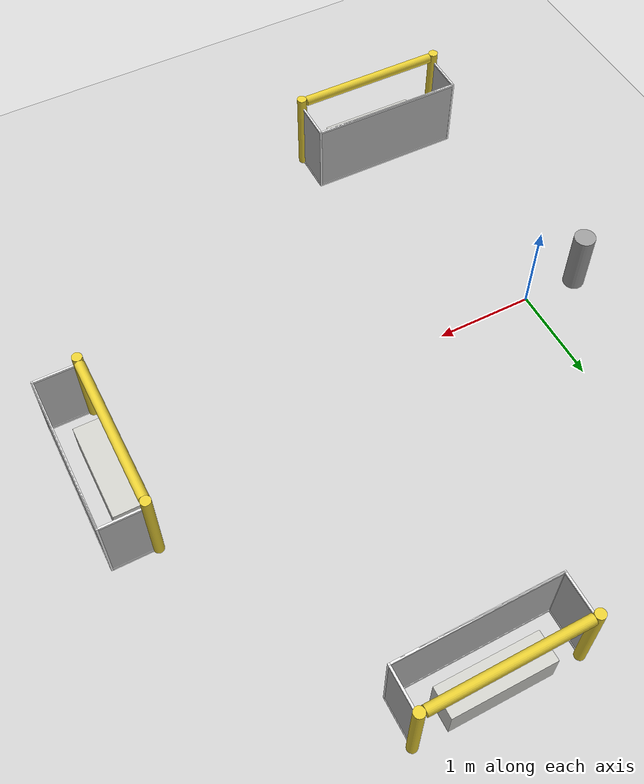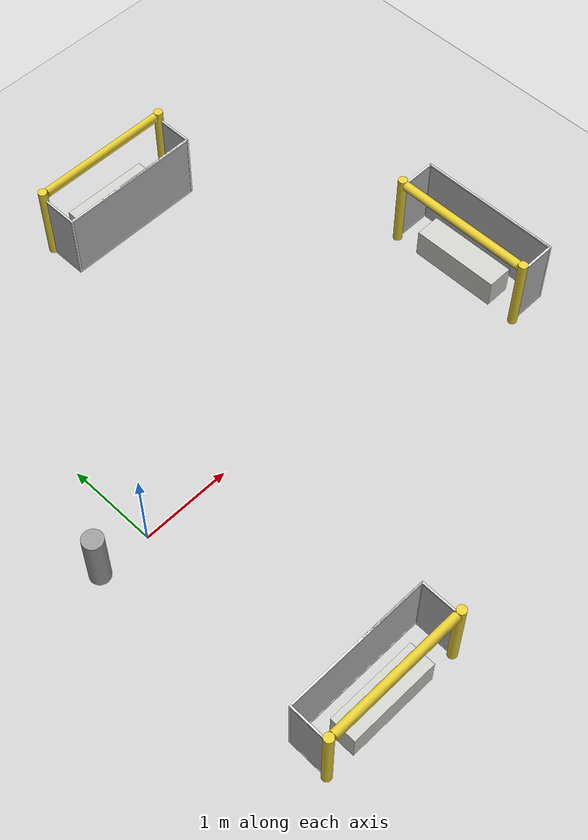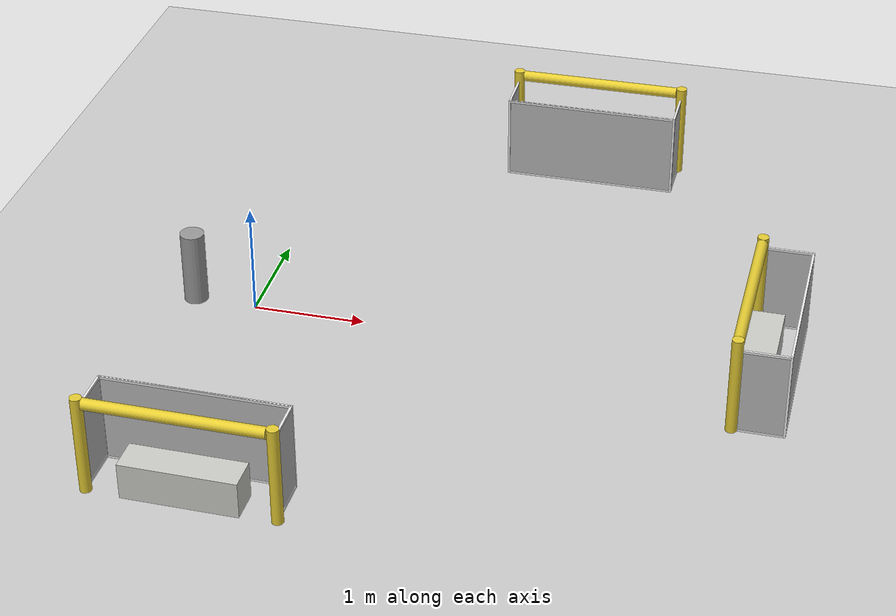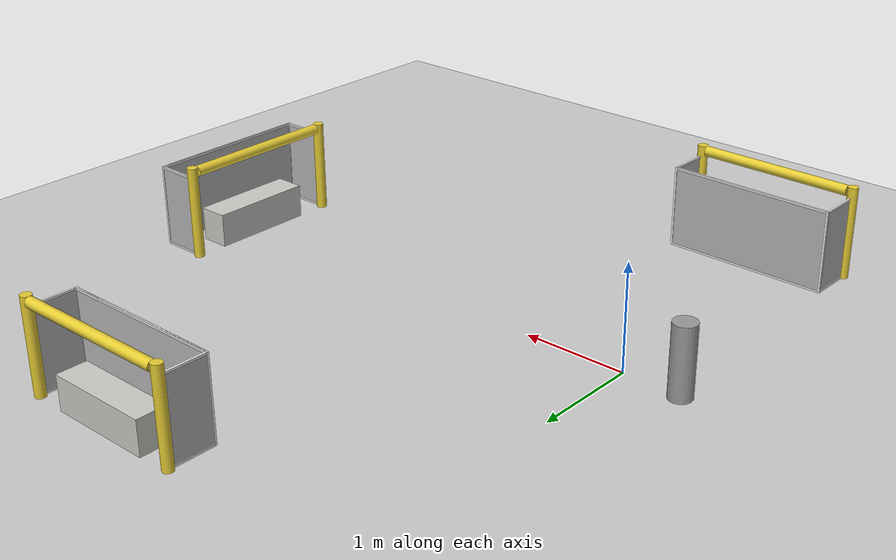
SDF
<sdf version="1.6">
 <world name="default">
  <light name="sun" type="directional">
   <pose>0 0 10 0 -0 0</pose>
   <diffuse>0.8 0.8 0.8 1</diffuse>
   <specular>0.2 0.2 0.2 1</specular>
   <attenuation>
    <range>1000</range>
    <constant>0.9</constant>
    <linear>0.01</linear>
    <quadratic>0.001</quadratic>
   </attenuation>
   <direction>-0.5 0.1 -0.9</direction>
  </light>
  <model name="ground_plane">
   <static>1</static>
   <link name="link">
    <collision name="collision">
     <geometry><plane><normal>0 0 1</normal><size>100 100</size></plane></geometry>
     <surface>
      <contact><collide_bitmask>65535</collide_bitmask></contact>
      <friction><ode><mu>100</mu><mu2>50</mu2></ode></friction>
     </surface>
    </collision>
    <visual name="visual">
     <cast_shadows>0</cast_shadows>
     <geometry><plane><normal>0 0 1</normal><size>100 100</size></plane></geometry>
     <material>
      <script><uri>file://media/materials/scripts/gazebo.material</uri><name>Gazebo/Grey</name></script>
     </material>
    </visual>
   </link>
  </model>
  <physics name="default_physics" default="0" type="ode">
   <real_time_update_rate>1000</real_time_update_rate>
   <max_step_size>0.001</max_step_size>
   <real_time_factor>1</real_time_factor>
   <ode>
    <solver>
     <type>quick</type>
     <iters>150</iters>
     <precon_iters>0</precon_iters>
     <sor>1.4</sor>
     <use_dynamic_moi_rescaling>1</use_dynamic_moi_rescaling>
    </solver>
    <constraints>
     <cfm>1e-05</cfm>
     <erp>0.2</erp>
     <contact_max_correcting_vel>2000</contact_max_correcting_vel>
     <contact_surface_layer>0.01</contact_surface_layer>
    </constraints>
   </ode>
  </physics>
  <scene><ambient>0.4 0.4 0.4 1</ambient><background>0.7 0.7 0.7 1</background><shadows>1</shadows></scene>
  <gravity>0 0 -9.8</gravity>
  <magnetic_field>6e-06 2.3e-05 -4.2e-05</magnetic_field>
  <atmosphere type="adiabatic"/>
  <audio><device>default</device></audio>
  <spherical_coordinates>
   <surface_model>EARTH_WGS84</surface_model>
   <latitude_deg>0</latitude_deg>
   <longitude_deg>0</longitude_deg>
   <elevation>0</elevation>
   <heading_deg>0</heading_deg>
  </spherical_coordinates>
  <model name="small_table">
   <link name="link">
    <inertial>
     <mass>0.815675</mass>
     <inertia>
      <ixx>0.075238</ixx>
      <ixy>0</ixy>
      <ixz>0</ixz>
      <iyy>0.0128756</iyy>
      <iyz>0</iyz>
      <izz>0.0735833</izz>
     </inertia>
    </inertial>
    <visual name="visual">
     <geometry><box><size>0.287297 1 0.326929</size></box></geometry>
     <material>
      <script><name>Gazebo/CeilingTiled</name><uri>file://media/materials/scripts/gazebo.material</uri></script>
      <shader type="pixel"><normal_map>__default__</normal_map></shader>
      <ambient>0.7 0.7 0.7 1</ambient>
      <diffuse>0.9 0.9 0.9 1</diffuse>
      <specular>0.01 0.01 0.01 1</specular>
      <emissive>0 0 0 1</emissive>
     </material>
    </visual>
    <collision name="collision">
     <geometry><box><size>0.287297 1 0.326929</size></box></geometry>
     <surface>
      <friction>
       <ode><mu>1</mu><mu2>1</mu2><fdir1>0 0 0</fdir1><slip1>0</slip1><slip2>0</slip2></ode>
       <torsional>
        <coefficient>1</coefficient>
        <patch_radius>0</patch_radius>
        <surface_radius>0</surface_radius>
        <use_patch_radius>1</use_patch_radius>
        <ode><slip>0</slip></ode>
       </torsional>
      </friction>
      <bounce><restitution_coefficient>0</restitution_coefficient><threshold>1e+06</threshold></bounce>
      <contact>
       <collide_without_contact>0</collide_without_contact>
       <collide_without_contact_bitmask>1</collide_without_contact_bitmask>
       <collide_bitmask>1</collide_bitmask>
       <ode>
        <soft_cfm>0</soft_cfm>
        <soft_erp>0.2</soft_erp>
        <kp>1e+13</kp>
        <kd>1</kd>
        <max_vel>0.01</max_vel>
        <min_depth>0</min_depth>
       </ode>
       <bullet>
        <split_impulse>1</split_impulse>
        <split_impulse_penetration_threshold>-0.01</split_impulse_penetration_threshold>
        <soft_cfm>0</soft_cfm>
        <soft_erp>0.2</soft_erp>
        <kp>1e+13</kp>
        <kd>1</kd>
       </bullet>
      </contact>
     </surface>
    </collision>
   </link>
   <static>0</static>
   <pose>4.49493 0.022415 0.163464 0 -0 0.000335</pose>
  </model>
  <model name="small_table_0">
   <link name="link">
    <inertial>
     <mass>1000</mass>
     <inertia><ixx>92.2402</ixx><ixy>0</ixy><ixz>0</ixz><iyy>15.7852</iyy><iyz>0</iyz><izz>90.2116</izz></inertia>
    </inertial>
    <visual name="visual">
     <geometry><box><size>0.287297 1 0.326929</size></box></geometry>
     <material>
      <script><name>Gazebo/CeilingTiled</name><uri>file://media/materials/scripts/gazebo.material</uri></script>
      <shader type="pixel"><normal_map>__default__</normal_map></shader>
      <ambient>0.7 0.7 0.7 1</ambient>
      <diffuse>0.9 0.9 0.9 1</diffuse>
      <specular>0.01 0.01 0.01 1</specular>
      <emissive>0 0 0 1</emissive>
     </material>
    </visual>
    <collision name="collision">
     <geometry><box><size>0.287297 1 0.326929</size></box></geometry>
     <surface>
      <friction>
       <ode><mu>1</mu><mu2>1</mu2><fdir1>0 0 0</fdir1><slip1>0</slip1><slip2>0</slip2></ode>
       <torsional>
        <coefficient>1</coefficient>
        <patch_radius>0</patch_radius>
        <surface_radius>0</surface_radius>
        <use_patch_radius>1</use_patch_radius>
        <ode><slip>0</slip></ode>
       </torsional>
      </friction>
      <bounce><restitution_coefficient>0</restitution_coefficient><threshold>1e+06</threshold></bounce>
      <contact>
       <collide_without_contact>0</collide_without_contact>
       <collide_without_contact_bitmask>1</collide_without_contact_bitmask>
       <collide_bitmask>1</collide_bitmask>
       <ode>
        <soft_cfm>0</soft_cfm>
        <soft_erp>0.2</soft_erp>
        <kp>1e+13</kp>
        <kd>1</kd>
        <max_vel>0.01</max_vel>
        <min_depth>0</min_depth>
       </ode>
       <bullet>
        <split_impulse>1</split_impulse>
        <split_impulse_penetration_threshold>-0.01</split_impulse_penetration_threshold>
        <soft_cfm>0</soft_cfm>
        <soft_erp>0.2</soft_erp>
        <kp>1e+13</kp>
        <kd>1</kd>
       </bullet>
      </contact>
     </surface>
    </collision>
   </link>
   <static>0</static>
   <pose>2.45054 3.20313 0.163464 0 -0 1.56878</pose>
  </model>
  <light name="user_directional_light_0" type="directional">
   <pose>-4.28528 -1.4039 1 0 -0 0</pose>
   <diffuse>0.5 0.5 0.5 1</diffuse>
   <specular>0.1 0.1 0.1 1</specular>
   <direction>0.1 0.1 -0.9</direction>
   <attenuation>
    <range>20</range>
    <constant>0.5</constant>
    <linear>0.01</linear>
    <quadratic>0.001</quadratic>
   </attenuation>
  </light>
  <light name="user_directional_light_1" type="directional">
   <pose>3.85624 2.06994 1 0 -0 0</pose>
   <diffuse>0.5 0.5 0.5 1</diffuse>
   <specular>0.1 0.1 0.1 1</specular>
   <direction>0.1 0.1 -0.9</direction>
   <attenuation>
    <range>20</range>
    <constant>0.5</constant>
    <linear>0.01</linear>
    <quadratic>0.001</quadratic>
   </attenuation>
  </light>
  <light name="user_directional_light_2" type="directional">
   <pose>-4.66307 8.49749 1 0 -0 0</pose>
   <diffuse>0.5 0.5 0.5 1</diffuse>
   <specular>0.1 0.1 0.1 1</specular>
   <direction>0.1 0.1 -0.9</direction>
   <attenuation>
    <range>20</range>
    <constant>0.5</constant>
    <linear>0.01</linear>
    <quadratic>0.001</quadratic>
   </attenuation>
  </light>
  <light name="user_directional_light_3" type="directional">
   <pose>5.76901 8.68099 1 0 -0 0</pose>
   <diffuse>0.5 0.5 0.5 1</diffuse>
   <specular>0.1 0.1 0.1 1</specular>
   <direction>0.1 0.1 -0.9</direction>
   <attenuation>
    <range>20</range>
    <constant>0.5</constant>
    <linear>0.01</linear>
    <quadratic>0.001</quadratic>
   </attenuation>
  </light>
  <light name="user_directional_light_4" type="directional">
   <pose>4.22363 -8.46709 1 0 -0 0</pose>
   <diffuse>0.5 0.5 0.5 1</diffuse>
   <specular>0.1 0.1 0.1 1</specular>
   <direction>0.1 0.1 -0.9</direction>
   <attenuation>
    <range>20</range>
    <constant>0.5</constant>
    <linear>0.01</linear>
    <quadratic>0.001</quadratic>
   </attenuation>
  </light>
  <light name="user_directional_light_5" type="directional">
   <pose>-3.4048 -8.37436 1 0 -0 0</pose>
   <diffuse>0.5 0.5 0.5 1</diffuse>
   <specular>0.1 0.1 0.1 1</specular>
   <direction>0.1 0.1 -0.9</direction>
   <attenuation>
    <range>20</range>
    <constant>0.5</constant>
    <linear>0.01</linear>
    <quadratic>0.001</quadratic>
   </attenuation>
  </light>
  <model name="RoboCup 2014 SPL Goal">
   <static>1</static>
   <link name="left_post">
    <pose>0 0.8 0.45 0 -0 0</pose>
    <collision name="collision">
     <geometry><cylinder><radius>0.05</radius><length>0.9</length></cylinder></geometry>
    </collision>
    <visual name="visual">
     <geometry><cylinder><radius>0.05</radius><length>0.9</length></cylinder></geometry>
     <material>
      <script><uri>file://media/materials/scripts/gazebo.material</uri><name>Gazebo/ZincYellow</name></script>
     </material>
    </visual>
   </link>
   <link name="left_support_horiz_lower">
    <pose>0.24 0.8 0.01 0 -0 0</pose>
    <collision name="collision"><geometry><box><size>0.38 0.02 0.02</size></box></geometry></collision>
    <visual name="visual">
     <geometry><box><size>0.38 0.02 0.02</size></box></geometry>
     <material>
      <script><uri>file://media/materials/scripts/gazebo.material</uri><name>Gazebo/White</name></script>
     </material>
    </visual>
   </link>
   <link name="left_support_horiz_upper">
    <pose>0.24 0.8 0.79 0 -0 0</pose>
    <collision name="collision"><geometry><box><size>0.38 0.02 0.02</size></box></geometry></collision>
    <visual name="visual">
     <geometry><box><size>0.38 0.02 0.02</size></box></geometry>
     <material>
      <script><uri>file://media/materials/scripts/gazebo.material</uri><name>Gazebo/White</name></script>
     </material>
    </visual>
   </link>
   <link name="left_support_vertical">
    <pose>0.44 0.8 0.4 3.14159 1.57079 3.14159</pose>
    <collision name="collision"><geometry><box><size>0.8 0.02 0.02</size></box></geometry></collision>
    <visual name="visual">
     <geometry><box><size>0.8 0.02 0.02</size></box></geometry>
     <material>
      <script><uri>file://media/materials/scripts/gazebo.material</uri><name>Gazebo/White</name></script>
     </material>
    </visual>
   </link>
   <link name="right_support_horiz_lower">
    <pose>0.24 -0.8 0.01 0 -0 0</pose>
    <collision name="collision"><geometry><box><size>0.38 0.02 0.02</size></box></geometry></collision>
    <visual name="visual">
     <geometry><box><size>0.38 0.02 0.02</size></box></geometry>
     <material>
      <script><uri>file://media/materials/scripts/gazebo.material</uri><name>Gazebo/White</name></script>
     </material>
    </visual>
   </link>
   <link name="right_support_horiz_upper">
    <pose>0.24 -0.8 0.79 0 -0 0</pose>
    <collision name="collision"><geometry><box><size>0.38 0.02 0.02</size></box></geometry></collision>
    <visual name="visual">
     <geometry><box><size>0.38 0.02 0.02</size></box></geometry>
     <material>
      <script><uri>file://media/materials/scripts/gazebo.material</uri><name>Gazebo/White</name></script>
     </material>
    </visual>
   </link>
   <link name="right_support_vertical">
    <pose>0.44 -0.8 0.4 3.14159 1.57079 3.14159</pose>
    <collision name="collision"><geometry><box><size>0.8 0.02 0.02</size></box></geometry></collision>
    <visual name="visual">
     <geometry><box><size>0.8 0.02 0.02</size></box></geometry>
     <material>
      <script><uri>file://media/materials/scripts/gazebo.material</uri><name>Gazebo/White</name></script>
     </material>
    </visual>
   </link>
   <link name="center_support_horiz_lower">
    <pose>0.44 0 0.01 3.14159 1.57079 3.14159</pose>
    <collision name="collision"><geometry><box><size>0.02 1.58 0.02</size></box></geometry></collision>
    <visual name="visual">
     <geometry><box><size>0.02 1.58 0.02</size></box></geometry>
     <material>
      <script><uri>file://media/materials/scripts/gazebo.material</uri><name>Gazebo/White</name></script>
     </material>
    </visual>
   </link>
   <link name="center_support_horiz_upper">
    <pose>0.44 0 0.79 3.14159 1.57079 3.14159</pose>
    <collision name="collision"><geometry><box><size>0.02 1.58 0.02</size></box></geometry></collision>
    <visual name="visual">
     <geometry><box><size>0.02 1.58 0.02</size></box></geometry>
     <material>
      <script><uri>file://media/materials/scripts/gazebo.material</uri><name>Gazebo/White</name></script>
     </material>
    </visual>
   </link>
   <link name="right_post">
    <pose>0 -0.8 0.45 0 -0 0</pose>
    <collision name="collision">
     <geometry><cylinder><radius>0.05</radius><length>0.9</length></cylinder></geometry>
    </collision>
    <visual name="visual">
     <geometry><cylinder><radius>0.05</radius><length>0.9</length></cylinder></geometry>
     <material>
      <script><uri>file://media/materials/scripts/gazebo.material</uri><name>Gazebo/ZincYellow</name></script>
     </material>
    </visual>
   </link>
   <link name="crossbar">
    <pose>0 0 0.85 1.57 1.57 0</pose>
    <collision name="collision">
     <geometry><cylinder><radius>0.05</radius><length>1.5</length></cylinder></geometry>
    </collision>
    <visual name="visual">
     <geometry><cylinder><radius>0.05</radius><length>1.5</length></cylinder></geometry>
     <material>
      <script><uri>file://media/materials/scripts/gazebo.material</uri><name>Gazebo/ZincYellow</name></script>
     </material>
    </visual>
   </link>
   <link name="center_net">
    <pose>0.44 0 0.4 0 -0 0</pose>
    <collision name="collision"><geometry><box><size>0.01 1.6 0.8</size></box></geometry></collision>
    <visual name="visual">
     <geometry><box><size>0.01 1.6 0.8</size></box></geometry>
     <material>
      <script>
       <uri>model://robocup09_spl_field/materials/scripts/</uri>
       <uri>model://robocup09_spl_field/materials/textures/</uri>
       <name>RoboCup/Net</name>
      </script>
     </material>
    </visual>
   </link>
   <link name="left_net">
    <pose>0.24 0.8 0.4 0 -0 0</pose>
    <collision name="collision"><geometry><box><size>0.38 0.01 0.76</size></box></geometry></collision>
    <visual name="visual">
     <geometry><box><size>0.38 0.01 0.76</size></box></geometry>
     <material>
      <script>
       <uri>model://robocup09_spl_field/materials/scripts/</uri>
       <uri>model://robocup09_spl_field/materials/textures/</uri>
       <name>RoboCup/Net</name>
      </script>
     </material>
    </visual>
   </link>
   <link name="right_net">
    <pose>0.24 -0.8 0.4 0 -0 0</pose>
    <collision name="collision"><geometry><box><size>0.38 0.01 0.76</size></box></geometry></collision>
    <visual name="visual">
     <geometry><box><size>0.38 0.01 0.76</size></box></geometry>
     <material>
      <script>
       <uri>model://robocup09_spl_field/materials/scripts/</uri>
       <uri>model://robocup09_spl_field/materials/textures/</uri>
       <name>RoboCup/Net</name>
      </script>
     </material>
    </visual>
   </link>
   <pose>4.37127 0.011795 0 0 -0 0</pose>
  </model>
  <model name="small_table_1">
   <link name="link">
    <inertial>
     <mass>1000</mass>
     <inertia><ixx>92.2402</ixx><ixy>0</ixy><ixz>0</ixz><iyy>15.7852</iyy><iyz>0</iyz><izz>90.2116</izz></inertia>
    </inertial>
    <visual name="visual">
     <geometry><box><size>0.287297 1 0.326929</size></box></geometry>
     <material>
      <script><name>Gazebo/CeilingTiled</name><uri>file://media/materials/scripts/gazebo.material</uri></script>
      <shader type="pixel"><normal_map>__default__</normal_map></shader>
      <ambient>0.7 0.7 0.7 1</ambient>
      <diffuse>0.9 0.9 0.9 1</diffuse>
      <specular>0.01 0.01 0.01 1</specular>
      <emissive>0 0 0 1</emissive>
     </material>
    </visual>
    <collision name="collision">
     <geometry><box><size>0.287297 1 0.326929</size></box></geometry>
     <surface>
      <friction>
       <ode><mu>1</mu><mu2>1</mu2><fdir1>0 0 0</fdir1><slip1>0</slip1><slip2>0</slip2></ode>
       <torsional>
        <coefficient>1</coefficient>
        <patch_radius>0</patch_radius>
        <surface_radius>0</surface_radius>
        <use_patch_radius>1</use_patch_radius>
        <ode><slip>0</slip></ode>
       </torsional>
      </friction>
      <bounce><restitution_coefficient>0</restitution_coefficient><threshold>1e+06</threshold></bounce>
      <contact>
       <collide_without_contact>0</collide_without_contact>
       <collide_without_contact_bitmask>1</collide_without_contact_bitmask>
       <collide_bitmask>1</collide_bitmask>
       <ode>
        <soft_cfm>0</soft_cfm>
        <soft_erp>0.2</soft_erp>
        <kp>1e+13</kp>
        <kd>1</kd>
        <max_vel>0.01</max_vel>
        <min_depth>0</min_depth>
       </ode>
       <bullet>
        <split_impulse>1</split_impulse>
        <split_impulse_penetration_threshold>-0.01</split_impulse_penetration_threshold>
        <soft_cfm>0</soft_cfm>
        <soft_erp>0.2</soft_erp>
        <kp>1e+13</kp>
        <kd>1</kd>
       </bullet>
      </contact>
     </surface>
    </collision>
   </link>
   <static>0</static>
   <pose>0.312177 -2.69344 0.163464 0 -0 1.55821</pose>
  </model>
  <model name="RoboCup 2014 SPL Goal_0">
   <static>1</static>
   <link name="left_post">
    <pose>0 0.8 0.45 0 -0 0</pose>
    <collision name="collision">
     <geometry><cylinder><radius>0.05</radius><length>0.9</length></cylinder></geometry>
    </collision>
    <visual name="visual">
     <geometry><cylinder><radius>0.05</radius><length>0.9</length></cylinder></geometry>
     <material>
      <script><uri>file://media/materials/scripts/gazebo.material</uri><name>Gazebo/ZincYellow</name></script>
     </material>
    </visual>
   </link>
   <link name="left_support_horiz_lower">
    <pose>0.24 0.8 0.01 0 -0 0</pose>
    <collision name="collision"><geometry><box><size>0.38 0.02 0.02</size></box></geometry></collision>
    <visual name="visual">
     <geometry><box><size>0.38 0.02 0.02</size></box></geometry>
     <material>
      <script><uri>file://media/materials/scripts/gazebo.material</uri><name>Gazebo/White</name></script>
     </material>
    </visual>
   </link>
   <link name="left_support_horiz_upper">
    <pose>0.24 0.8 0.79 0 -0 0</pose>
    <collision name="collision"><geometry><box><size>0.38 0.02 0.02</size></box></geometry></collision>
    <visual name="visual">
     <geometry><box><size>0.38 0.02 0.02</size></box></geometry>
     <material>
      <script><uri>file://media/materials/scripts/gazebo.material</uri><name>Gazebo/White</name></script>
     </material>
    </visual>
   </link>
   <link name="left_support_vertical">
    <pose>0.44 0.8 0.4 3.14159 1.57079 3.14159</pose>
    <collision name="collision"><geometry><box><size>0.8 0.02 0.02</size></box></geometry></collision>
    <visual name="visual">
     <geometry><box><size>0.8 0.02 0.02</size></box></geometry>
     <material>
      <script><uri>file://media/materials/scripts/gazebo.material</uri><name>Gazebo/White</name></script>
     </material>
    </visual>
   </link>
   <link name="right_support_horiz_lower">
    <pose>0.24 -0.8 0.01 0 -0 0</pose>
    <collision name="collision"><geometry><box><size>0.38 0.02 0.02</size></box></geometry></collision>
    <visual name="visual">
     <geometry><box><size>0.38 0.02 0.02</size></box></geometry>
     <material>
      <script><uri>file://media/materials/scripts/gazebo.material</uri><name>Gazebo/White</name></script>
     </material>
    </visual>
   </link>
   <link name="right_support_horiz_upper">
    <pose>0.24 -0.8 0.79 0 -0 0</pose>
    <collision name="collision"><geometry><box><size>0.38 0.02 0.02</size></box></geometry></collision>
    <visual name="visual">
     <geometry><box><size>0.38 0.02 0.02</size></box></geometry>
     <material>
      <script><uri>file://media/materials/scripts/gazebo.material</uri><name>Gazebo/White</name></script>
     </material>
    </visual>
   </link>
   <link name="right_support_vertical">
    <pose>0.44 -0.8 0.4 3.14159 1.57079 3.14159</pose>
    <collision name="collision"><geometry><box><size>0.8 0.02 0.02</size></box></geometry></collision>
    <visual name="visual">
     <geometry><box><size>0.8 0.02 0.02</size></box></geometry>
     <material>
      <script><uri>file://media/materials/scripts/gazebo.material</uri><name>Gazebo/White</name></script>
     </material>
    </visual>
   </link>
   <link name="center_support_horiz_lower">
    <pose>0.44 0 0.01 3.14159 1.57079 3.14159</pose>
    <collision name="collision"><geometry><box><size>0.02 1.58 0.02</size></box></geometry></collision>
    <visual name="visual">
     <geometry><box><size>0.02 1.58 0.02</size></box></geometry>
     <material>
      <script><uri>file://media/materials/scripts/gazebo.material</uri><name>Gazebo/White</name></script>
     </material>
    </visual>
   </link>
   <link name="center_support_horiz_upper">
    <pose>0.44 0 0.79 3.14159 1.57079 3.14159</pose>
    <collision name="collision"><geometry><box><size>0.02 1.58 0.02</size></box></geometry></collision>
    <visual name="visual">
     <geometry><box><size>0.02 1.58 0.02</size></box></geometry>
     <material>
      <script><uri>file://media/materials/scripts/gazebo.material</uri><name>Gazebo/White</name></script>
     </material>
    </visual>
   </link>
   <link name="right_post">
    <pose>0 -0.8 0.45 0 -0 0</pose>
    <collision name="collision">
     <geometry><cylinder><radius>0.05</radius><length>0.9</length></cylinder></geometry>
    </collision>
    <visual name="visual">
     <geometry><cylinder><radius>0.05</radius><length>0.9</length></cylinder></geometry>
     <material>
      <script><uri>file://media/materials/scripts/gazebo.material</uri><name>Gazebo/ZincYellow</name></script>
     </material>
    </visual>
   </link>
   <link name="crossbar">
    <pose>0 0 0.85 1.57 1.57 0</pose>
    <collision name="collision">
     <geometry><cylinder><radius>0.05</radius><length>1.5</length></cylinder></geometry>
    </collision>
    <visual name="visual">
     <geometry><cylinder><radius>0.05</radius><length>1.5</length></cylinder></geometry>
     <material>
      <script><uri>file://media/materials/scripts/gazebo.material</uri><name>Gazebo/ZincYellow</name></script>
     </material>
    </visual>
   </link>
   <link name="center_net">
    <pose>0.44 0 0.4 0 -0 0</pose>
    <collision name="collision"><geometry><box><size>0.01 1.6 0.8</size></box></geometry></collision>
    <visual name="visual">
     <geometry><box><size>0.01 1.6 0.8</size></box></geometry>
     <material>
      <script>
       <uri>model://robocup09_spl_field/materials/scripts/</uri>
       <uri>model://robocup09_spl_field/materials/textures/</uri>
       <name>RoboCup/Net</name>
      </script>
     </material>
    </visual>
   </link>
   <link name="left_net">
    <pose>0.24 0.8 0.4 0 -0 0</pose>
    <collision name="collision"><geometry><box><size>0.38 0.01 0.76</size></box></geometry></collision>
    <visual name="visual">
     <geometry><box><size>0.38 0.01 0.76</size></box></geometry>
     <material>
      <script>
       <uri>model://robocup09_spl_field/materials/scripts/</uri>
       <uri>model://robocup09_spl_field/materials/textures/</uri>
       <name>RoboCup/Net</name>
      </script>
     </material>
    </visual>
   </link>
   <link name="right_net">
    <pose>0.24 -0.8 0.4 0 -0 0</pose>
    <collision name="collision"><geometry><box><size>0.38 0.01 0.76</size></box></geometry></collision>
    <visual name="visual">
     <geometry><box><size>0.38 0.01 0.76</size></box></geometry>
     <material>
      <script>
       <uri>model://robocup09_spl_field/materials/scripts/</uri>
       <uri>model://robocup09_spl_field/materials/textures/</uri>
       <name>RoboCup/Net</name>
      </script>
     </material>
    </visual>
   </link>
   <pose>0.317116 -2.80324 0 0 -0 1.56097</pose>
  </model>
  <model name="RoboCup 2014 SPL Goal_1">
   <static>1</static>
   <link name="left_post">
    <pose>0 0.8 0.45 0 -0 0</pose>
    <collision name="collision">
     <geometry><cylinder><radius>0.05</radius><length>0.9</length></cylinder></geometry>
    </collision>
    <visual name="visual">
     <geometry><cylinder><radius>0.05</radius><length>0.9</length></cylinder></geometry>
     <material>
      <script><uri>file://media/materials/scripts/gazebo.material</uri><name>Gazebo/ZincYellow</name></script>
     </material>
    </visual>
   </link>
   <link name="left_support_horiz_lower">
    <pose>0.24 0.8 0.01 0 -0 0</pose>
    <collision name="collision"><geometry><box><size>0.38 0.02 0.02</size></box></geometry></collision>
    <visual name="visual">
     <geometry><box><size>0.38 0.02 0.02</size></box></geometry>
     <material>
      <script><uri>file://media/materials/scripts/gazebo.material</uri><name>Gazebo/White</name></script>
     </material>
    </visual>
   </link>
   <link name="left_support_horiz_upper">
    <pose>0.24 0.8 0.79 0 -0 0</pose>
    <collision name="collision"><geometry><box><size>0.38 0.02 0.02</size></box></geometry></collision>
    <visual name="visual">
     <geometry><box><size>0.38 0.02 0.02</size></box></geometry>
     <material>
      <script><uri>file://media/materials/scripts/gazebo.material</uri><name>Gazebo/White</name></script>
     </material>
    </visual>
   </link>
   <link name="left_support_vertical">
    <pose>0.44 0.8 0.4 3.14159 1.57079 3.14159</pose>
    <collision name="collision"><geometry><box><size>0.8 0.02 0.02</size></box></geometry></collision>
    <visual name="visual">
     <geometry><box><size>0.8 0.02 0.02</size></box></geometry>
     <material>
      <script><uri>file://media/materials/scripts/gazebo.material</uri><name>Gazebo/White</name></script>
     </material>
    </visual>
   </link>
   <link name="right_support_horiz_lower">
    <pose>0.24 -0.8 0.01 0 -0 0</pose>
    <collision name="collision"><geometry><box><size>0.38 0.02 0.02</size></box></geometry></collision>
    <visual name="visual">
     <geometry><box><size>0.38 0.02 0.02</size></box></geometry>
     <material>
      <script><uri>file://media/materials/scripts/gazebo.material</uri><name>Gazebo/White</name></script>
     </material>
    </visual>
   </link>
   <link name="right_support_horiz_upper">
    <pose>0.24 -0.8 0.79 0 -0 0</pose>
    <collision name="collision"><geometry><box><size>0.38 0.02 0.02</size></box></geometry></collision>
    <visual name="visual">
     <geometry><box><size>0.38 0.02 0.02</size></box></geometry>
     <material>
      <script><uri>file://media/materials/scripts/gazebo.material</uri><name>Gazebo/White</name></script>
     </material>
    </visual>
   </link>
   <link name="right_support_vertical">
    <pose>0.44 -0.8 0.4 3.14159 1.57079 3.14159</pose>
    <collision name="collision"><geometry><box><size>0.8 0.02 0.02</size></box></geometry></collision>
    <visual name="visual">
     <geometry><box><size>0.8 0.02 0.02</size></box></geometry>
     <material>
      <script><uri>file://media/materials/scripts/gazebo.material</uri><name>Gazebo/White</name></script>
     </material>
    </visual>
   </link>
   <link name="center_support_horiz_lower">
    <pose>0.44 0 0.01 3.14159 1.57079 3.14159</pose>
    <collision name="collision"><geometry><box><size>0.02 1.58 0.02</size></box></geometry></collision>
    <visual name="visual">
     <geometry><box><size>0.02 1.58 0.02</size></box></geometry>
     <material>
      <script><uri>file://media/materials/scripts/gazebo.material</uri><name>Gazebo/White</name></script>
     </material>
    </visual>
   </link>
   <link name="center_support_horiz_upper">
    <pose>0.44 0 0.79 3.14159 1.57079 3.14159</pose>
    <collision name="collision"><geometry><box><size>0.02 1.58 0.02</size></box></geometry></collision>
    <visual name="visual">
     <geometry><box><size>0.02 1.58 0.02</size></box></geometry>
     <material>
      <script><uri>file://media/materials/scripts/gazebo.material</uri><name>Gazebo/White</name></script>
     </material>
    </visual>
   </link>
   <link name="right_post">
    <pose>0 -0.8 0.45 0 -0 0</pose>
    <collision name="collision">
     <geometry><cylinder><radius>0.05</radius><length>0.9</length></cylinder></geometry>
    </collision>
    <visual name="visual">
     <geometry><cylinder><radius>0.05</radius><length>0.9</length></cylinder></geometry>
     <material>
      <script><uri>file://media/materials/scripts/gazebo.material</uri><name>Gazebo/ZincYellow</name></script>
     </material>
    </visual>
   </link>
   <link name="crossbar">
    <pose>0 0 0.85 1.57 1.57 0</pose>
    <collision name="collision">
     <geometry><cylinder><radius>0.05</radius><length>1.5</length></cylinder></geometry>
    </collision>
    <visual name="visual">
     <geometry><cylinder><radius>0.05</radius><length>1.5</length></cylinder></geometry>
     <material>
      <script><uri>file://media/materials/scripts/gazebo.material</uri><name>Gazebo/ZincYellow</name></script>
     </material>
    </visual>
   </link>
   <link name="center_net">
    <pose>0.44 0 0.4 0 -0 0</pose>
    <collision name="collision"><geometry><box><size>0.01 1.6 0.8</size></box></geometry></collision>
    <visual name="visual">
     <geometry><box><size>0.01 1.6 0.8</size></box></geometry>
     <material>
      <script>
       <uri>model://robocup09_spl_field/materials/scripts/</uri>
       <uri>model://robocup09_spl_field/materials/textures/</uri>
       <name>RoboCup/Net</name>
      </script>
     </material>
    </visual>
   </link>
   <link name="left_net">
    <pose>0.24 0.8 0.4 0 -0 0</pose>
    <collision name="collision"><geometry><box><size>0.38 0.01 0.76</size></box></geometry></collision>
    <visual name="visual">
     <geometry><box><size>0.38 0.01 0.76</size></box></geometry>
     <material>
      <script>
       <uri>model://robocup09_spl_field/materials/scripts/</uri>
       <uri>model://robocup09_spl_field/materials/textures/</uri>
       <name>RoboCup/Net</name>
      </script>
     </material>
    </visual>
   </link>
   <link name="right_net">
    <pose>0.24 -0.8 0.4 0 -0 0</pose>
    <collision name="collision"><geometry><box><size>0.38 0.01 0.76</size></box></geometry></collision>
    <visual name="visual">
     <geometry><box><size>0.38 0.01 0.76</size></box></geometry>
     <material>
      <script>
       <uri>model://robocup09_spl_field/materials/scripts/</uri>
       <uri>model://robocup09_spl_field/materials/textures/</uri>
       <name>RoboCup/Net</name>
      </script>
     </material>
    </visual>
   </link>
   <pose>2.46374 3.31443 0 0 0 -1.56937</pose>
  </model>
  <model name="unit_cylinder">
   <link name="link">
    <inertial>
     <mass>1</mass>
     <inertia><ixx>0.145833</ixx><ixy>0</ixy><ixz>0</ixz><iyy>0.145833</iyy><iyz>0</iyz><izz>0.125</izz></inertia>
    </inertial>
    <visual name="visual">
     <geometry><cylinder><radius>0.108142</radius><length>0.679054</length></cylinder></geometry>
     <material>
      <script><name>Gazebo/Grey</name><uri>file://media/materials/scripts/gazebo.material</uri></script>
     </material>
    </visual>
    <collision name="collision">
     <geometry><cylinder><radius>0.108142</radius><length>0.679054</length></cylinder></geometry>
     <surface>
      <friction>
       <ode><mu>1</mu><mu2>1</mu2><fdir1>0 0 0</fdir1><slip1>0</slip1><slip2>0</slip2></ode>
       <torsional>
        <coefficient>1</coefficient>
        <patch_radius>0</patch_radius>
        <surface_radius>0</surface_radius>
        <use_patch_radius>1</use_patch_radius>
        <ode><slip>0</slip></ode>
       </torsional>
      </friction>
      <bounce><restitution_coefficient>0</restitution_coefficient><threshold>1e+06</threshold></bounce>
      <contact>
       <collide_without_contact>0</collide_without_contact>
       <collide_without_contact_bitmask>1</collide_without_contact_bitmask>
       <collide_bitmask>1</collide_bitmask>
       <ode>
        <soft_cfm>0</soft_cfm>
        <soft_erp>0.2</soft_erp>
        <kp>1e+13</kp>
        <kd>1</kd>
        <max_vel>0.01</max_vel>
        <min_depth>0</min_depth>
       </ode>
       <bullet>
        <split_impulse>1</split_impulse>
        <split_impulse_penetration_threshold>-0.01</split_impulse_penetration_threshold>
        <soft_cfm>0</soft_cfm>
        <soft_erp>0.2</soft_erp>
        <kp>1e+13</kp>
        <kd>1</kd>
       </bullet>
      </contact>
     </surface>
    </collision>
   </link>
   <static>0</static>
   <pose>-0.564138 0.019756 0.339518 0 -0 0</pose>
  </model>
 </world>
</sdf>
